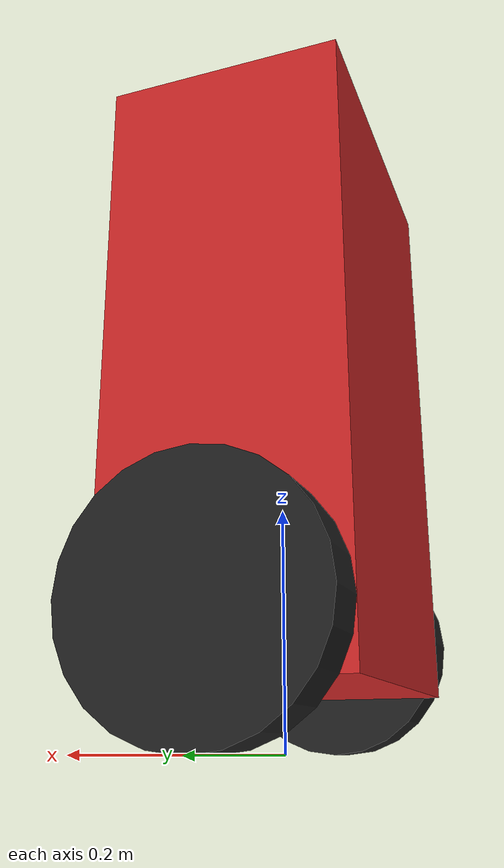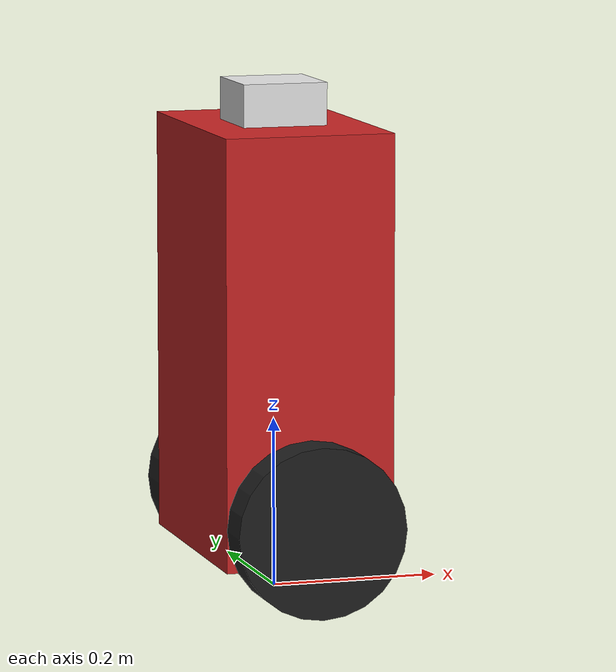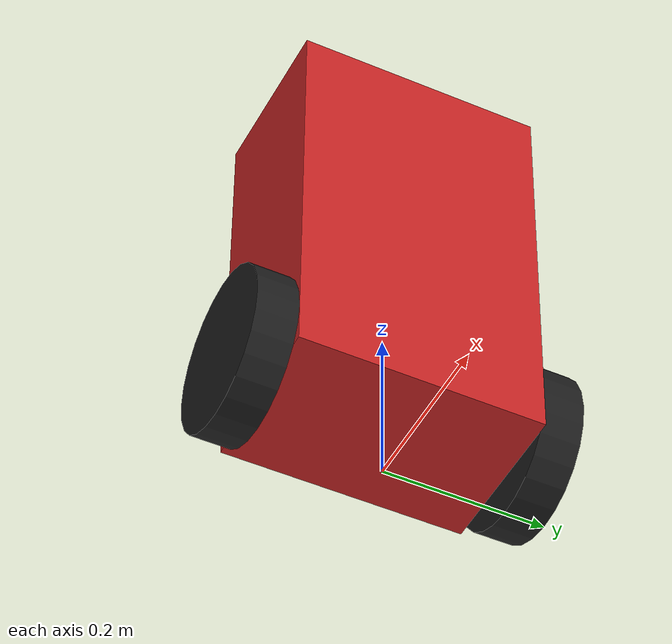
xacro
<?xml version="1.0"?>

<robot name="sbrobot">

  <!-- Link Definitions -->
  <link name="base_footprint">
  </link>

  <link name="base_link">
    <inertial>
      <mass value="5.0"/>
      <origin xyz="0.0 0 0.55" rpy="0 0 0"/>
      <inertia ixx="0.141" ixy="0.0" ixz="0.0" iyy="0.120" iyz="0.0" izz="0.0541"/>
    </inertial>
    <collision name='collision'>
      <origin xyz="0 0 0.3" rpy="0 0 0"/>
      <geometry>
        <box size=".2 .3 .5"/>
      </geometry>
    </collision>
    <visual name='visual'>
      <origin xyz="0 0 0.3" rpy="0 0 0"/>
      <geometry>
        <box size=".2 .3 .5"/>
      </geometry>
    </visual>
  </link>

  <link name="head">
    <inertial>
      <mass value="0.1"/>
      <origin xyz="0.0 0.0 0.0" rpy="0 0 0"/>
      <inertia ixx="0.00001" ixy="0.0" ixz="0.0" iyy="0.00001" iyz="0.0" izz="0.00001"/>
    </inertial>
    <collision name='collision'>
      <origin xyz="0.0 0.0 0.0" rpy="0 0 0"/>
      <geometry>
        <box size=".1 .1 .1"/>
      </geometry>
    </collision>
    <visual name='visual'>
      <origin xyz="0 0 0" rpy="0 0 0"/>
      <geometry>
        <box size=".1 .1 .1"/>
      </geometry>
    </visual>
  </link>

  <link name="left_wheel">
    <inertial>
      <origin xyz="0 0 0" rpy="0 1.5707 1.5707"/>
      <mass value=".5"/>
      <inertia
        ixx="0.0004" ixy="0.0" ixz="0.0"
        iyy="0.0025" iyz="0.0"
        izz="0.0004"/>
    </inertial>
    <collision name="collision">
      <origin xyz="0 0 0" rpy="0 1.5707 1.5707"/>
      <geometry>
        <cylinder radius="0.1" length="0.05"/>
      </geometry>
    </collision>
    <visual name="visual">
      <origin xyz="0 0 0" rpy="0 1.5707 1.5707"/>
      <geometry>
        <cylinder radius="0.1" length="0.05"/>
      </geometry>
    </visual>
  </link>

  <link name="right_wheel">
     <collision name="collision">
      <origin xyz="0 0 0" rpy="0 1.5707 1.5707"/>
      <geometry>
        <cylinder radius="0.1" length="0.05"/>
      </geometry>
    </collision>
    <inertial>
      <origin xyz="0 0 0" rpy="0 1.5707 1.5707"/>
      <mass value="0.5"/>
      <inertia
        ixx="0.0004" ixy="0.0" ixz="0.0"
        iyy="0.0025" iyz="0.0"
        izz="0.0004"/>
    </inertial>
    <visual name="visual">
      <origin xyz="0 0 0" rpy="0 1.5707 1.5707"/>
      <geometry>
        <cylinder radius="0.1" length="0.05"/>
      </geometry>
    </visual>
  </link>

  <link name="imu_link">
  </link>

  <!-- Joint Definitions -->
  <joint type="fixed" name="dummy_joint">
    <origin xyz="0 0.0 0" rpy="0 0 0"/>
    <parent link="base_footprint"/>
    <child link="base_link"/>
  </joint>

  <joint type="fixed" name="head_joint">
    <origin xyz="0 0.0 0.55" rpy="0 0 0"/>
    <parent link="base_link"/>
    <child link="head"/>
  </joint>

  <joint type="continuous" name="left_wheel_hinge">
    <origin xyz="0 0.175 0.1" rpy="0 0 0"/>
    <parent link="base_link"/>
    <child link="left_wheel"/>
    <axis xyz="0 1 0"/>
    <limit effort="1.5" velocity="1000"/>
  </joint>

  <joint type="continuous" name="right_wheel_hinge">
    <origin xyz="0 -0.175 0.1" rpy="0 0 0"/>
    <parent link="base_link"/>
    <child link="right_wheel"/>
    <axis xyz="0 1 0"/>
    <limit effort="1.5" velocity="1000"/>
  </joint>

   <joint name="imu_joint" type="fixed">
    <parent link="base_link"/>
    <child link="imu_link"/>
    <origin xyz="0 0 0" rpy="0 0 0"/>
  </joint>

   <gazebo reference="base_link">
        <material>Gazebo/Red</material>
    </gazebo>

    <gazebo reference="head">
        <material>Gazebo/White</material>
    </gazebo>

    <gazebo reference="left_wheel">
        <material>Gazebo/Black</material>
    </gazebo>

    <gazebo reference="right_wheel">
        <material>Gazebo/Black</material>
    </gazebo>

    <!-- Define Gazebo plugins for robot control and sensor data integration -->
    <!-- Joint State Publisher Plugin -->
    <gazebo>
        <plugin name="gazebo_ros_joint_state_publisher"
                filename="libgazebo_ros_joint_state_publisher.so">
            <update_rate>20</update_rate>
            <!-- List all joints you want to publish state for -->
            <joint_name>left_wheel_hinge</joint_name>
            <joint_name>right_wheel_hinge</joint_name>
            <!-- Add other joints as needed -->
        </plugin>
    </gazebo>

    <!-- Differential Drive Plugin -->
    <gazebo>
        <plugin name="gazebo_ros_diff_drive"
                filename="libgazebo_ros_diff_drive.so">
            <ros>
                <namespace>/</namespace>
                <argument>--ros-args -r __ns:=/sbrobot</argument>
            </ros>
            <update_rate>10</update_rate>
            <left_joint>left_wheel_hinge</left_joint>
            <right_joint>right_wheel_hinge</right_joint>
            <wheel_separation>0.35</wheel_separation>
            <wheel_diameter>0.2</wheel_diameter>
            <command_topic>cmd_vel</command_topic>
            <odometry_topic>odom</odometry_topic>
            <odometry_frame>odom</odometry_frame>
            <robot_base_frame>base_link</robot_base_frame>
        </plugin>
    </gazebo>

    <!-- Example IMU Sensor Plugin -->
    <gazebo reference="imu_link">
    <gravity>true</gravity>
    <sensor name="imu_sensor" type="imu">
      <always_on>true</always_on>
      <update_rate>100</update_rate>
      <visualize>true</visualize>
      <topic>__default_topic__</topic>
      <plugin filename="libgazebo_ros_imu_sensor.so" name="imu_plugin">
        <topicName>imu</topicName>
        <bodyName>imu_link</bodyName>
        <updateRateHZ>10.0</updateRateHZ>
        <gaussianNoise>0.0</gaussianNoise>
        <xyzOffset>0 0 0</xyzOffset>
        <rpyOffset>0 0 0</rpyOffset>
        <frameName>imu_link</frameName>
        <initialOrientationAsReference>false</initialOrientationAsReference>
      </plugin>
      <pose>0 0 0 0 0 0</pose>
    </sensor>
  </gazebo>

</robot>
